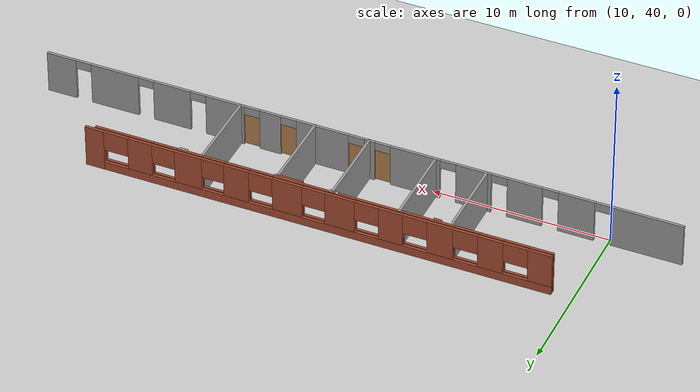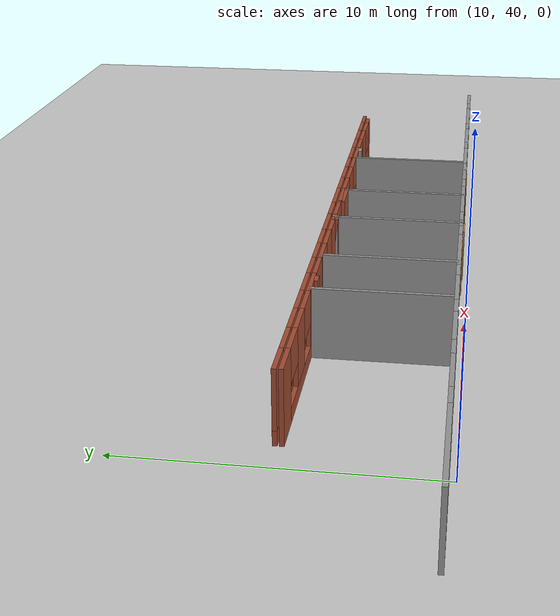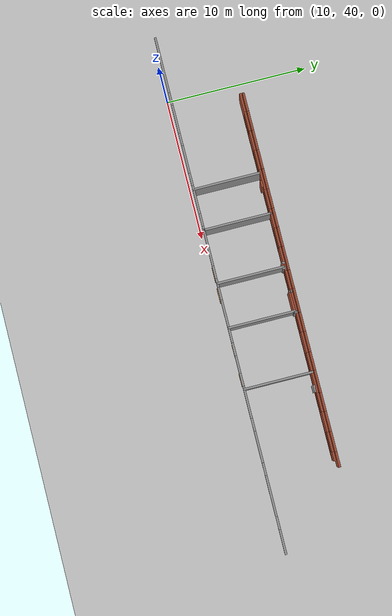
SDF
<sdf version="1.6">
 <world name="default">
  <model name="ground_plane">
   <static>1</static>
   <link name="link">
    <collision name="collision">
     <geometry><plane><normal>0 0 1</normal><size>100 100</size></plane></geometry>
     <surface><friction><ode><mu>100</mu><mu2>50</mu2></ode></friction></surface>
    </collision>
    <visual name="visual">
     <cast_shadows>0</cast_shadows>
     <geometry><plane><normal>0 0 1</normal><size>100 100</size></plane></geometry>
     <material>
      <script><uri>file://media/materials/scripts/gazebo.material</uri><name>Gazebo/Grey</name></script>
     </material>
    </visual>
   </link>
  </model>
  <model name="CVSSP">
   <pose>23.8714 24.094 0 0 -0 0</pose>
   <link name="Wall_301">
    <pose>0.541411 21.1476 0 0 -0 3.14159</pose>
    <visual name="Wall_301_Visual_0">
     <pose>-12.7063 0 1.25 0 -0 0</pose>
     <geometry><box><size>1.08735 0.15 2.5</size></box></geometry>
     <material>
      <script><uri>file://media/materials/scripts/gazebo.material</uri><name>Gazebo/Bricks</name></script>
      <ambient>1 1 1 1</ambient>
     </material>
    </visual>
    <collision name="Wall_301_Collision_0">
     <geometry><box><size>1.08735 0.15 2.5</size></box></geometry>
     <pose>-12.7063 0 1.25 0 -0 0</pose>
    </collision>
    <visual name="Wall_301_Visual_1">
     <pose>0.543674 0 0.25 0 -0 0</pose>
     <geometry><box><size>25.4127 0.15 0.5</size></box></geometry>
     <material>
      <script><uri>file://media/materials/scripts/gazebo.material</uri><name>Gazebo/Bricks</name></script>
      <ambient>1 1 1 1</ambient>
     </material>
    </visual>
    <collision name="Wall_301_Collision_1">
     <geometry><box><size>25.4127 0.15 0.5</size></box></geometry>
     <pose>0.543674 0 0.25 0 -0 0</pose>
    </collision>
    <visual name="Wall_301_Visual_2">
     <pose>-10.054 0 1.5 0 -0 0</pose>
     <geometry><box><size>1.40457 0.15 2</size></box></geometry>
     <material>
      <script><uri>file://media/materials/scripts/gazebo.material</uri><name>Gazebo/Bricks</name></script>
      <ambient>1 1 1 1</ambient>
     </material>
    </visual>
    <collision name="Wall_301_Collision_2">
     <geometry><box><size>1.40457 0.15 2</size></box></geometry>
     <pose>-10.054 0 1.5 0 -0 0</pose>
    </collision>
    <visual name="Wall_301_Visual_3">
     <pose>-7.26 0 1.5 0 -0 0</pose>
     <geometry><box><size>1.56325 0.15 2</size></box></geometry>
     <material>
      <script><uri>file://media/materials/scripts/gazebo.material</uri><name>Gazebo/Bricks</name></script>
      <ambient>1 1 1 1</ambient>
     </material>
    </visual>
    <collision name="Wall_301_Collision_3">
     <geometry><box><size>1.56325 0.15 2</size></box></geometry>
     <pose>-7.26 0 1.5 0 -0 0</pose>
    </collision>
    <visual name="Wall_301_Visual_4">
     <pose>-4.48871 0 1.5 0 -0 0</pose>
     <geometry><box><size>1.43857 0.15 2</size></box></geometry>
     <material>
      <script><uri>file://media/materials/scripts/gazebo.material</uri><name>Gazebo/Bricks</name></script>
      <ambient>1 1 1 1</ambient>
     </material>
    </visual>
    <collision name="Wall_301_Collision_4">
     <geometry><box><size>1.43857 0.15 2</size></box></geometry>
     <pose>-4.48871 0 1.5 0 -0 0</pose>
    </collision>
    <visual name="Wall_301_Visual_5">
     <pose>-1.57856 0 1.5 0 -0 0</pose>
     <geometry><box><size>1.70493 0.15 2</size></box></geometry>
     <material>
      <script><uri>file://media/materials/scripts/gazebo.material</uri><name>Gazebo/Bricks</name></script>
      <ambient>1 1 1 1</ambient>
     </material>
    </visual>
    <collision name="Wall_301_Collision_5">
     <geometry><box><size>1.70493 0.15 2</size></box></geometry>
     <pose>-1.57856 0 1.5 0 -0 0</pose>
    </collision>
    <visual name="Wall_301_Visual_6">
     <pose>1.41376 0 1.5 0 -0 0</pose>
     <geometry><box><size>1.68226 0.15 2</size></box></geometry>
     <material>
      <script><uri>file://media/materials/scripts/gazebo.material</uri><name>Gazebo/Bricks</name></script>
      <ambient>1 1 1 1</ambient>
     </material>
    </visual>
    <collision name="Wall_301_Collision_6">
     <geometry><box><size>1.68226 0.15 2</size></box></geometry>
     <pose>1.41376 0 1.5 0 -0 0</pose>
    </collision>
    <visual name="Wall_301_Visual_7">
     <pose>4.28139 0 1.5 0 -0 0</pose>
     <geometry><box><size>1.35356 0.15 2</size></box></geometry>
     <material>
      <script><uri>file://media/materials/scripts/gazebo.material</uri><name>Gazebo/Bricks</name></script>
      <ambient>1 1 1 1</ambient>
     </material>
    </visual>
    <collision name="Wall_301_Collision_7">
     <geometry><box><size>1.35356 0.15 2</size></box></geometry>
     <pose>4.28139 0 1.5 0 -0 0</pose>
    </collision>
    <visual name="Wall_301_Visual_8">
     <pose>7.04557 0 1.5 0 -0 0</pose>
     <geometry><box><size>1.44133 0.15 2</size></box></geometry>
     <material>
      <script><uri>file://media/materials/scripts/gazebo.material</uri><name>Gazebo/Bricks</name></script>
      <ambient>1 1 1 1</ambient>
     </material>
    </visual>
    <collision name="Wall_301_Collision_8">
     <geometry><box><size>1.44133 0.15 2</size></box></geometry>
     <pose>7.04557 0 1.5 0 -0 0</pose>
    </collision>
    <visual name="Wall_301_Visual_9">
     <pose>9.84934 0 1.5 0 -0 0</pose>
     <geometry><box><size>1.39875 0.15 2</size></box></geometry>
     <material>
      <script><uri>file://media/materials/scripts/gazebo.material</uri><name>Gazebo/Bricks</name></script>
      <ambient>1 1 1 1</ambient>
     </material>
    </visual>
    <collision name="Wall_301_Collision_9">
     <geometry><box><size>1.39875 0.15 2</size></box></geometry>
     <pose>9.84934 0 1.5 0 -0 0</pose>
    </collision>
    <visual name="Wall_301_Visual_10">
     <pose>12.5827 0 1.5 0 -0 0</pose>
     <geometry><box><size>1.33456 0.15 2</size></box></geometry>
     <material>
      <script><uri>file://media/materials/scripts/gazebo.material</uri><name>Gazebo/Bricks</name></script>
      <ambient>1 1 1 1</ambient>
     </material>
    </visual>
    <collision name="Wall_301_Collision_10">
     <geometry><box><size>1.33456 0.15 2</size></box></geometry>
     <pose>12.5827 0 1.5 0 -0 0</pose>
    </collision>
    <visual name="Wall_301_Visual_11">
     <pose>-11.4595 0 1.9 0 -0 0</pose>
     <geometry><box><size>1.4064 0.15 1.2</size></box></geometry>
     <material>
      <script><uri>file://media/materials/scripts/gazebo.material</uri><name>Gazebo/Bricks</name></script>
      <ambient>1 1 1 1</ambient>
     </material>
    </visual>
    <collision name="Wall_301_Collision_11">
     <geometry><box><size>1.4064 0.15 1.2</size></box></geometry>
     <pose>-11.4595 0 1.9 0 -0 0</pose>
    </collision>
    <visual name="Wall_301_Visual_12">
     <pose>-8.69666 0 1.9 0 -0 0</pose>
     <geometry><box><size>1.31005 0.15 1.2</size></box></geometry>
     <material>
      <script><uri>file://media/materials/scripts/gazebo.material</uri><name>Gazebo/Bricks</name></script>
      <ambient>1 1 1 1</ambient>
     </material>
    </visual>
    <collision name="Wall_301_Collision_12">
     <geometry><box><size>1.31005 0.15 1.2</size></box></geometry>
     <pose>-8.69666 0 1.9 0 -0 0</pose>
    </collision>
    <visual name="Wall_301_Visual_13">
     <pose>-5.84319 0 1.9 0 -0 0</pose>
     <geometry><box><size>1.27038 0.15 1.2</size></box></geometry>
     <material>
      <script><uri>file://media/materials/scripts/gazebo.material</uri><name>Gazebo/Bricks</name></script>
      <ambient>1 1 1 1</ambient>
     </material>
    </visual>
    <collision name="Wall_301_Collision_13">
     <geometry><box><size>1.27038 0.15 1.2</size></box></geometry>
     <pose>-5.84319 0 1.9 0 -0 0</pose>
    </collision>
    <visual name="Wall_301_Visual_14">
     <pose>-3.10023 0 1.9 0 -0 0</pose>
     <geometry><box><size>1.33839 0.15 1.2</size></box></geometry>
     <material>
      <script><uri>file://media/materials/scripts/gazebo.material</uri><name>Gazebo/Bricks</name></script>
      <ambient>1 1 1 1</ambient>
     </material>
    </visual>
    <collision name="Wall_301_Collision_14">
     <geometry><box><size>1.33839 0.15 1.2</size></box></geometry>
     <pose>-3.10023 0 1.9 0 -0 0</pose>
    </collision>
    <visual name="Wall_301_Visual_15">
     <pose>-0.076737 0 1.9 0 -0 0</pose>
     <geometry><box><size>1.29872 0.15 1.2</size></box></geometry>
     <material>
      <script><uri>file://media/materials/scripts/gazebo.material</uri><name>Gazebo/Bricks</name></script>
      <ambient>1 1 1 1</ambient>
     </material>
    </visual>
    <collision name="Wall_301_Collision_15">
     <geometry><box><size>1.29872 0.15 1.2</size></box></geometry>
     <pose>-0.076737 0 1.9 0 -0 0</pose>
    </collision>
    <visual name="Wall_301_Visual_16">
     <pose>2.92975 0 1.9 0 -0 0</pose>
     <geometry><box><size>1.34973 0.15 1.2</size></box></geometry>
     <material>
      <script><uri>file://media/materials/scripts/gazebo.material</uri><name>Gazebo/Bricks</name></script>
      <ambient>1 1 1 1</ambient>
     </material>
    </visual>
    <collision name="Wall_301_Collision_16">
     <geometry><box><size>1.34973 0.15 1.2</size></box></geometry>
     <pose>2.92975 0 1.9 0 -0 0</pose>
    </collision>
    <visual name="Wall_301_Visual_17">
     <pose>5.64154 0 1.9 0 -0 0</pose>
     <geometry><box><size>1.36673 0.15 1.2</size></box></geometry>
     <material>
      <script><uri>file://media/materials/scripts/gazebo.material</uri><name>Gazebo/Bricks</name></script>
      <ambient>1 1 1 1</ambient>
     </material>
    </visual>
    <collision name="Wall_301_Collision_17">
     <geometry><box><size>1.36673 0.15 1.2</size></box></geometry>
     <pose>5.64154 0 1.9 0 -0 0</pose>
    </collision>
    <visual name="Wall_301_Visual_18">
     <pose>8.4581 0 1.9 0 -0 0</pose>
     <geometry><box><size>1.38373 0.15 1.2</size></box></geometry>
     <material>
      <script><uri>file://media/materials/scripts/gazebo.material</uri><name>Gazebo/Bricks</name></script>
      <ambient>1 1 1 1</ambient>
     </material>
    </visual>
    <collision name="Wall_301_Collision_18">
     <geometry><box><size>1.38373 0.15 1.2</size></box></geometry>
     <pose>8.4581 0 1.9 0 -0 0</pose>
    </collision>
    <visual name="Wall_301_Visual_19">
     <pose>11.2321 0 1.9 0 -0 0</pose>
     <geometry><box><size>1.36673 0.15 1.2</size></box></geometry>
     <material>
      <script><uri>file://media/materials/scripts/gazebo.material</uri><name>Gazebo/Bricks</name></script>
      <ambient>1 1 1 1</ambient>
     </material>
    </visual>
    <collision name="Wall_301_Collision_19">
     <geometry><box><size>1.36673 0.15 1.2</size></box></geometry>
     <pose>11.2321 0 1.9 0 -0 0</pose>
    </collision>
   </link>
   <link name="Wall_303">
    <pose>0.29478 20.9408 0 0 -0 0</pose>
    <visual name="Wall_303_Visual_0">
     <pose>-12.3344 0 1.25 0 -0 0</pose>
     <geometry><box><size>1.33119 0.15 2.5</size></box></geometry>
     <material>
      <script><uri>file://media/materials/scripts/gazebo.material</uri><name>Gazebo/Bricks</name></script>
      <ambient>1 1 1 1</ambient>
     </material>
    </visual>
    <collision name="Wall_303_Collision_0">
     <geometry><box><size>1.33119 0.15 2.5</size></box></geometry>
     <pose>-12.3344 0 1.25 0 -0 0</pose>
    </collision>
    <visual name="Wall_303_Visual_1">
     <pose>0.665598 0 0.25 0 -0 0</pose>
     <geometry><box><size>24.6688 0.15 0.5</size></box></geometry>
     <material>
      <script><uri>file://media/materials/scripts/gazebo.material</uri><name>Gazebo/Bricks</name></script>
      <ambient>1 1 1 1</ambient>
     </material>
    </visual>
    <collision name="Wall_303_Collision_1">
     <geometry><box><size>24.6688 0.15 0.5</size></box></geometry>
     <pose>0.665598 0 0.25 0 -0 0</pose>
    </collision>
    <visual name="Wall_303_Visual_2">
     <pose>-9.60766 0 1.5 0 -0 0</pose>
     <geometry><box><size>1.38884 0.15 2</size></box></geometry>
     <material>
      <script><uri>file://media/materials/scripts/gazebo.material</uri><name>Gazebo/Bricks</name></script>
      <ambient>1 1 1 1</ambient>
     </material>
    </visual>
    <collision name="Wall_303_Collision_2">
     <geometry><box><size>1.38884 0.15 2</size></box></geometry>
     <pose>-9.60766 0 1.5 0 -0 0</pose>
    </collision>
    <visual name="Wall_303_Visual_3">
     <pose>-6.80389 0 1.5 0 -0 0</pose>
     <geometry><box><size>1.45124 0.15 2</size></box></geometry>
     <material>
      <script><uri>file://media/materials/scripts/gazebo.material</uri><name>Gazebo/Bricks</name></script>
      <ambient>1 1 1 1</ambient>
     </material>
    </visual>
    <collision name="Wall_303_Collision_3">
     <geometry><box><size>1.45124 0.15 2</size></box></geometry>
     <pose>-6.80389 0 1.5 0 -0 0</pose>
    </collision>
    <visual name="Wall_303_Visual_4">
     <pose>-4.03476 0 1.5 0 -0 0</pose>
     <geometry><box><size>1.34223 0.15 2</size></box></geometry>
     <material>
      <script><uri>file://media/materials/scripts/gazebo.material</uri><name>Gazebo/Bricks</name></script>
      <ambient>1 1 1 1</ambient>
     </material>
    </visual>
    <collision name="Wall_303_Collision_4">
     <geometry><box><size>1.34223 0.15 2</size></box></geometry>
     <pose>-4.03476 0 1.5 0 -0 0</pose>
    </collision>
    <visual name="Wall_303_Visual_5">
     <pose>-1.16996 0 1.5 0 -0 0</pose>
     <geometry><box><size>1.6766 0.15 2</size></box></geometry>
     <material>
      <script><uri>file://media/materials/scripts/gazebo.material</uri><name>Gazebo/Bricks</name></script>
      <ambient>1 1 1 1</ambient>
     </material>
    </visual>
    <collision name="Wall_303_Collision_5">
     <geometry><box><size>1.6766 0.15 2</size></box></geometry>
     <pose>-1.16996 0 1.5 0 -0 0</pose>
    </collision>
    <visual name="Wall_303_Visual_6">
     <pose>1.82803 0 1.5 0 -0 0</pose>
     <geometry><box><size>1.7106 0.15 2</size></box></geometry>
     <material>
      <script><uri>file://media/materials/scripts/gazebo.material</uri><name>Gazebo/Bricks</name></script>
      <ambient>1 1 1 1</ambient>
     </material>
    </visual>
    <collision name="Wall_303_Collision_6">
     <geometry><box><size>1.7106 0.15 2</size></box></geometry>
     <pose>1.82803 0 1.5 0 -0 0</pose>
    </collision>
    <visual name="Wall_303_Visual_7">
     <pose>4.72401 0 1.5 0 -0 0</pose>
     <geometry><box><size>1.43857 0.15 2</size></box></geometry>
     <material>
      <script><uri>file://media/materials/scripts/gazebo.material</uri><name>Gazebo/Bricks</name></script>
      <ambient>1 1 1 1</ambient>
     </material>
    </visual>
    <collision name="Wall_303_Collision_7">
     <geometry><box><size>1.43857 0.15 2</size></box></geometry>
     <pose>4.72401 0 1.5 0 -0 0</pose>
    </collision>
    <visual name="Wall_303_Visual_8">
     <pose>7.50097 0 1.5 0 -0 0</pose>
     <geometry><box><size>1.55192 0.15 2</size></box></geometry>
     <material>
      <script><uri>file://media/materials/scripts/gazebo.material</uri><name>Gazebo/Bricks</name></script>
      <ambient>1 1 1 1</ambient>
     </material>
    </visual>
    <collision name="Wall_303_Collision_8">
     <geometry><box><size>1.55192 0.15 2</size></box></geometry>
     <pose>7.50097 0 1.5 0 -0 0</pose>
    </collision>
    <visual name="Wall_303_Visual_9">
     <pose>10.2921 0 1.5 0 -0 0</pose>
     <geometry><box><size>1.3989 0.15 2</size></box></geometry>
     <material>
      <script><uri>file://media/materials/scripts/gazebo.material</uri><name>Gazebo/Bricks</name></script>
      <ambient>1 1 1 1</ambient>
     </material>
    </visual>
    <collision name="Wall_303_Collision_9">
     <geometry><box><size>1.3989 0.15 2</size></box></geometry>
     <pose>10.2921 0 1.5 0 -0 0</pose>
    </collision>
    <visual name="Wall_303_Visual_10">
     <pose>12.682 0 1.5 0 -0 0</pose>
     <geometry><box><size>0.636054 0.15 2</size></box></geometry>
     <material>
      <script><uri>file://media/materials/scripts/gazebo.material</uri><name>Gazebo/Bricks</name></script>
      <ambient>1 1 1 1</ambient>
     </material>
    </visual>
    <collision name="Wall_303_Collision_10">
     <geometry><box><size>0.636054 0.15 2</size></box></geometry>
     <pose>12.682 0 1.5 0 -0 0</pose>
    </collision>
    <visual name="Wall_303_Visual_11">
     <pose>-10.9854 0 1.9 0 -0 0</pose>
     <geometry><box><size>1.36673 0.15 1.2</size></box></geometry>
     <material>
      <script><uri>file://media/materials/scripts/gazebo.material</uri><name>Gazebo/Bricks</name></script>
      <ambient>1 1 1 1</ambient>
     </material>
    </visual>
    <collision name="Wall_303_Collision_11">
     <geometry><box><size>1.36673 0.15 1.2</size></box></geometry>
     <pose>-10.9854 0 1.9 0 -0 0</pose>
    </collision>
    <visual name="Wall_303_Visual_12">
     <pose>-8.22138 0 1.9 0 -0 0</pose>
     <geometry><box><size>1.38373 0.15 1.2</size></box></geometry>
     <material>
      <script><uri>file://media/materials/scripts/gazebo.material</uri><name>Gazebo/Bricks</name></script>
      <ambient>1 1 1 1</ambient>
     </material>
    </visual>
    <collision name="Wall_303_Collision_12">
     <geometry><box><size>1.38373 0.15 1.2</size></box></geometry>
     <pose>-8.22138 0 1.9 0 -0 0</pose>
    </collision>
    <visual name="Wall_303_Visual_13">
     <pose>-5.39208 0 1.9 0 -0 0</pose>
     <geometry><box><size>1.37239 0.15 1.2</size></box></geometry>
     <material>
      <script><uri>file://media/materials/scripts/gazebo.material</uri><name>Gazebo/Bricks</name></script>
      <ambient>1 1 1 1</ambient>
     </material>
    </visual>
    <collision name="Wall_303_Collision_13">
     <geometry><box><size>1.37239 0.15 1.2</size></box></geometry>
     <pose>-5.39208 0 1.9 0 -0 0</pose>
    </collision>
    <visual name="Wall_303_Visual_14">
     <pose>-2.68595 0 1.9 0 -0 0</pose>
     <geometry><box><size>1.35539 0.15 1.2</size></box></geometry>
     <material>
      <script><uri>file://media/materials/scripts/gazebo.material</uri><name>Gazebo/Bricks</name></script>
      <ambient>1 1 1 1</ambient>
     </material>
    </visual>
    <collision name="Wall_303_Collision_14">
     <geometry><box><size>1.35539 0.15 1.2</size></box></geometry>
     <pose>-2.68595 0 1.9 0 -0 0</pose>
    </collision>
    <visual name="Wall_303_Visual_15">
     <pose>0.320535 0 1.9 0 -0 0</pose>
     <geometry><box><size>1.30439 0.15 1.2</size></box></geometry>
     <material>
      <script><uri>file://media/materials/scripts/gazebo.material</uri><name>Gazebo/Bricks</name></script>
      <ambient>1 1 1 1</ambient>
     </material>
    </visual>
    <collision name="Wall_303_Collision_15">
     <geometry><box><size>1.30439 0.15 1.2</size></box></geometry>
     <pose>0.320535 0 1.9 0 -0 0</pose>
    </collision>
    <visual name="Wall_303_Visual_16">
     <pose>3.34402 0 1.9 0 -0 0</pose>
     <geometry><box><size>1.32139 0.15 1.2</size></box></geometry>
     <material>
      <script><uri>file://media/materials/scripts/gazebo.material</uri><name>Gazebo/Bricks</name></script>
      <ambient>1 1 1 1</ambient>
     </material>
    </visual>
    <collision name="Wall_303_Collision_16">
     <geometry><box><size>1.32139 0.15 1.2</size></box></geometry>
     <pose>3.34402 0 1.9 0 -0 0</pose>
    </collision>
    <visual name="Wall_303_Visual_17">
     <pose>6.08415 0 1.9 0 -0 0</pose>
     <geometry><box><size>1.28172 0.15 1.2</size></box></geometry>
     <material>
      <script><uri>file://media/materials/scripts/gazebo.material</uri><name>Gazebo/Bricks</name></script>
      <ambient>1 1 1 1</ambient>
     </material>
    </visual>
    <collision name="Wall_303_Collision_17">
     <geometry><box><size>1.28172 0.15 1.2</size></box></geometry>
     <pose>6.08415 0 1.9 0 -0 0</pose>
    </collision>
    <visual name="Wall_303_Visual_18">
     <pose>8.93479 0 1.9 0 -0 0</pose>
     <geometry><box><size>1.31572 0.15 1.2</size></box></geometry>
     <material>
      <script><uri>file://media/materials/scripts/gazebo.material</uri><name>Gazebo/Bricks</name></script>
      <ambient>1 1 1 1</ambient>
     </material>
    </visual>
    <collision name="Wall_303_Collision_18">
     <geometry><box><size>1.31572 0.15 1.2</size></box></geometry>
     <pose>8.93479 0 1.9 0 -0 0</pose>
    </collision>
    <visual name="Wall_303_Visual_19">
     <pose>11.6777 0 1.9 0 -0 0</pose>
     <geometry><box><size>1.37239 0.15 1.2</size></box></geometry>
     <material>
      <script><uri>file://media/materials/scripts/gazebo.material</uri><name>Gazebo/Bricks</name></script>
      <ambient>1 1 1 1</ambient>
     </material>
    </visual>
    <collision name="Wall_303_Collision_19">
     <geometry><box><size>1.37239 0.15 1.2</size></box></geometry>
     <pose>11.6777 0 1.9 0 -0 0</pose>
    </collision>
   </link>
   <link name="Wall_315">
    <collision name="Wall_315_Collision">
     <geometry><box><size>4.75 0.15 2.5</size></box></geometry>
     <pose>0 0 1.25 0 -0 0</pose>
    </collision>
    <visual name="Wall_315_Visual">
     <pose>0 0 1.25 0 -0 0</pose>
     <geometry><box><size>4.75 0.15 2.5</size></box></geometry>
     <material>
      <script><uri>file://media/materials/scripts/gazebo.material</uri><name>Gazebo/Grey</name></script>
      <ambient>0.588235 0.588235 0.588235 1</ambient>
     </material>
    </visual>
    <pose>-7.00685 18.5251 0 0 -0 1.5708</pose>
   </link>
   <link name="Wall_318">
    <collision name="Wall_318_Collision">
     <geometry><box><size>4.79 0.15 2.5</size></box></geometry>
     <pose>0 0 1.25 0 -0 0</pose>
    </collision>
    <visual name="Wall_318_Visual">
     <pose>0 0 1.25 0 -0 0</pose>
     <geometry><box><size>4.79 0.15 2.5</size></box></geometry>
     <material>
      <script><uri>file://media/materials/scripts/gazebo.material</uri><name>Gazebo/Grey</name></script>
      <ambient>1 1 1 1</ambient>
     </material>
    </visual>
    <pose>-4.1133 18.5854 0 0 0 -1.5708</pose>
   </link>
   <link name="Wall_320">
    <collision name="Wall_320_Collision">
     <geometry><box><size>4.75 0.15 2.5</size></box></geometry>
     <pose>0 0 1.25 0 -0 0</pose>
    </collision>
    <visual name="Wall_320_Visual">
     <pose>0 0 1.25 0 -0 0</pose>
     <geometry><box><size>4.75 0.15 2.5</size></box></geometry>
     <material>
      <script><uri>file://media/materials/scripts/gazebo.material</uri><name>Gazebo/Grey</name></script>
      <ambient>0.588235 0.588235 0.588235 1</ambient>
     </material>
    </visual>
    <pose>-0.323303 18.5354 0 0 -0 1.5708</pose>
   </link>
   <link name="Wall_322">
    <collision name="Wall_322_Collision">
     <geometry><box><size>4.75 0.15 2.5</size></box></geometry>
     <pose>0 0 1.25 0 -0 0</pose>
    </collision>
    <visual name="Wall_322_Visual">
     <pose>0 0 1.25 0 -0 0</pose>
     <geometry><box><size>4.75 0.15 2.5</size></box></geometry>
     <material>
      <script><uri>file://media/materials/scripts/gazebo.material</uri><name>Gazebo/Grey</name></script>
      <ambient>0.588235 0.588235 0.588235 1</ambient>
     </material>
    </visual>
    <pose>2.8067 18.5154 0 0 -0 1.5708</pose>
   </link>
   <link name="Wall_323">
    <collision name="Wall_323_Collision">
     <geometry><box><size>1.5 0.15 2.5</size></box></geometry>
     <pose>0 0 1.25 0 -0 0</pose>
    </collision>
    <visual name="Wall_323_Visual">
     <pose>0 0 1.25 0 -0 0</pose>
     <geometry><box><size>1.5 0.15 2.5</size></box></geometry>
     <material>
      <script><uri>file://media/materials/scripts/gazebo.material</uri><name>Gazebo/Bricks</name></script>
      <ambient>1 1 1 1</ambient>
     </material>
    </visual>
    <pose>2.1317 20.8154 0 0 -0 3.14159</pose>
   </link>
   <link name="Wall_324">
    <collision name="Wall_324_Collision">
     <geometry><box><size>0.25 0.15 2.5</size></box></geometry>
     <pose>0 0 1.25 0 -0 0</pose>
    </collision>
    <visual name="Wall_324_Visual">
     <pose>0 0 1.25 0 -0 0</pose>
     <geometry><box><size>0.25 0.15 2.5</size></box></geometry>
     <material>
      <script><uri>file://media/materials/scripts/gazebo.material</uri><name>Gazebo/Grey</name></script>
      <ambient>1 1 1 1</ambient>
     </material>
    </visual>
    <pose>1.4567 20.8654 0 0 -0 1.5708</pose>
   </link>
   <link name="Wall_326">
    <collision name="Wall_326_Collision">
     <geometry><box><size>0.41 0.15 2.5</size></box></geometry>
     <pose>0 0 1.25 0 -0 0</pose>
    </collision>
    <visual name="Wall_326_Visual">
     <pose>0 0 1.25 0 -0 0</pose>
     <geometry><box><size>0.41 0.15 2.5</size></box></geometry>
     <material>
      <script><uri>file://media/materials/scripts/gazebo.material</uri><name>Gazebo/Bricks</name></script>
      <ambient>1 1 1 1</ambient>
     </material>
    </visual>
    <pose>-0.453303 20.8354 0 0 -0 3.14159</pose>
   </link>
   <link name="Wall_327">
    <collision name="Wall_327_Collision">
     <geometry><box><size>0.25 0.15 2.5</size></box></geometry>
     <pose>0 0 1.25 0 -0 0</pose>
    </collision>
    <visual name="Wall_327_Visual">
     <pose>0 0 1.25 0 -0 0</pose>
     <geometry><box><size>0.25 0.15 2.5</size></box></geometry>
     <material>
      <script><uri>file://media/materials/scripts/gazebo.material</uri><name>Gazebo/Grey</name></script>
      <ambient>1 1 1 1</ambient>
     </material>
    </visual>
    <pose>-0.583303 20.8854 0 0 -0 1.5708</pose>
   </link>
   <link name="Wall_329">
    <collision name="Wall_329_Collision">
     <geometry><box><size>0.25 0.15 2.5</size></box></geometry>
     <pose>0 0 1.25 0 -0 0</pose>
    </collision>
    <visual name="Wall_329_Visual">
     <pose>0 0 1.25 0 -0 0</pose>
     <geometry><box><size>0.25 0.15 2.5</size></box></geometry>
     <material>
      <script><uri>file://media/materials/scripts/gazebo.material</uri><name>Gazebo/Grey</name></script>
      <ambient>1 1 1 1</ambient>
     </material>
    </visual>
    <pose>-0.273303 20.8354 0 0 -0 0</pose>
   </link>
   <link name="Wall_330">
    <collision name="Wall_330_Collision">
     <geometry><box><size>0.25 0.15 2.5</size></box></geometry>
     <pose>0 0 1.25 0 -0 0</pose>
    </collision>
    <visual name="Wall_330_Visual">
     <pose>0 0 1.25 0 -0 0</pose>
     <geometry><box><size>0.25 0.15 2.5</size></box></geometry>
     <material>
      <script><uri>file://media/materials/scripts/gazebo.material</uri><name>Gazebo/Grey</name></script>
      <ambient>1 1 1 1</ambient>
     </material>
    </visual>
    <pose>-0.223303 20.8854 0 0 -0 1.5708</pose>
   </link>
   <link name="Wall_332">
    <collision name="Wall_332_Collision">
     <geometry><box><size>0.280384 0.15 2.5</size></box></geometry>
     <pose>0 0 1.25 0 -0 0</pose>
    </collision>
    <visual name="Wall_332_Visual">
     <pose>0 0 1.25 0 -0 0</pose>
     <geometry><box><size>0.280384 0.15 2.5</size></box></geometry>
     <material>
      <script><uri>file://media/materials/scripts/gazebo.material</uri><name>Gazebo/Grey</name></script>
      <ambient>1 1 1 1</ambient>
     </material>
    </visual>
    <pose>2.8517 20.8304 0 0 0 -0.076772</pose>
   </link>
   <link name="Wall_333">
    <collision name="Wall_333_Collision">
     <geometry><box><size>0.25 0.15 2.5</size></box></geometry>
     <pose>0 0 1.25 0 -0 0</pose>
    </collision>
    <visual name="Wall_333_Visual">
     <pose>0 0 1.25 0 -0 0</pose>
     <geometry><box><size>0.25 0.15 2.5</size></box></geometry>
     <material>
      <script><uri>file://media/materials/scripts/gazebo.material</uri><name>Gazebo/Grey</name></script>
      <ambient>1 1 1 1</ambient>
     </material>
    </visual>
    <pose>2.9067 20.8754 0 0 -0 1.5708</pose>
   </link>
   <link name="Wall_335">
    <collision name="Wall_335_Collision">
     <geometry><box><size>4.88455 0.15 2.5</size></box></geometry>
     <pose>0 0 1.25 0 -0 0</pose>
    </collision>
    <visual name="Wall_335_Visual">
     <pose>0 0 1.25 0 -0 0</pose>
     <geometry><box><size>4.88455 0.15 2.5</size></box></geometry>
     <material>
      <script><uri>file://media/materials/scripts/gazebo.material</uri><name>Gazebo/Grey</name></script>
      <ambient>0.588235 0.588235 0.588235 1</ambient>
     </material>
    </visual>
    <pose>7.10695 18.568 0 0 -0 1.5708</pose>
   </link>
   <link name="Wall_663">
    <collision name="Wall_663_Collision">
     <geometry><box><size>0.456076 0.15 2.5</size></box></geometry>
     <pose>0 0 1.25 0 -0 0</pose>
    </collision>
    <visual name="Wall_663_Visual">
     <pose>0 0 1.25 0 -0 0</pose>
     <geometry><box><size>0.456076 0.15 2.5</size></box></geometry>
     <material>
      <script><uri>file://media/materials/scripts/gazebo.material</uri><name>Gazebo/Bricks</name></script>
      <ambient>1 1 1 1</ambient>
     </material>
    </visual>
    <pose>-6.21292 20.8145 0 0 -0 0</pose>
   </link>
   <link name="Wall_671">
    <collision name="Wall_671_Collision">
     <geometry><box><size>0.491931 0.15 2.5</size></box></geometry>
     <pose>0 0 1.25 0 -0 0</pose>
    </collision>
    <visual name="Wall_671_Visual">
     <pose>0 0 1.25 0 -0 0</pose>
     <geometry><box><size>0.491931 0.15 2.5</size></box></geometry>
     <material>
      <script><uri>file://media/materials/scripts/gazebo.material</uri><name>Gazebo/Grey</name></script>
      <ambient>1 1 1 1</ambient>
     </material>
    </visual>
    <pose>8.2379 20.825 0 0 -0 0</pose>
   </link>
   <link name="Wall_70">
    <pose>0.280393 16.1874 0 0 -0 3.14159</pose>
    <visual name="Wall_70_Visual_0">
     <pose>-17.3872 0 1.25 0 -0 0</pose>
     <geometry><box><size>1.72569 0.15 2.5</size></box></geometry>
     <material>
      <script><uri>file://media/materials/scripts/gazebo.material</uri><name>Gazebo/Grey</name></script>
      <ambient>0.588235 0.588235 0.588235 1</ambient>
     </material>
    </visual>
    <collision name="Wall_70_Collision_0">
     <geometry><box><size>1.72569 0.15 2.5</size></box></geometry>
     <pose>-17.3872 0 1.25 0 -0 0</pose>
    </collision>
    <visual name="Wall_70_Visual_1">
     <pose>-14.2239 0 1.25 0 -0 0</pose>
     <geometry><box><size>2.8009 0.15 2.5</size></box></geometry>
     <material>
      <script><uri>file://media/materials/scripts/gazebo.material</uri><name>Gazebo/Grey</name></script>
      <ambient>0.588235 0.588235 0.588235 1</ambient>
     </material>
    </visual>
    <collision name="Wall_70_Collision_1">
     <geometry><box><size>2.8009 0.15 2.5</size></box></geometry>
     <pose>-14.2239 0 1.25 0 -0 0</pose>
    </collision>
    <visual name="Wall_70_Visual_2">
     <pose>-10.8352 0 1.25 0 -0 0</pose>
     <geometry><box><size>2.17637 0.15 2.5</size></box></geometry>
     <material>
      <script><uri>file://media/materials/scripts/gazebo.material</uri><name>Gazebo/Grey</name></script>
      <ambient>0.588235 0.588235 0.588235 1</ambient>
     </material>
    </visual>
    <collision name="Wall_70_Collision_2">
     <geometry><box><size>2.17637 0.15 2.5</size></box></geometry>
     <pose>-10.8352 0 1.25 0 -0 0</pose>
    </collision>
    <visual name="Wall_70_Visual_3">
     <pose>-7.72416 0 1.25 0 -0 0</pose>
     <geometry><box><size>2.24576 0.15 2.5</size></box></geometry>
     <material>
      <script><uri>file://media/materials/scripts/gazebo.material</uri><name>Gazebo/Grey</name></script>
      <ambient>0.588235 0.588235 0.588235 1</ambient>
     </material>
    </visual>
    <collision name="Wall_70_Collision_3">
     <geometry><box><size>2.24576 0.15 2.5</size></box></geometry>
     <pose>-7.72416 0 1.25 0 -0 0</pose>
    </collision>
    <visual name="Wall_70_Visual_4">
     <pose>-5.08727 0 1.25 0 -0 0</pose>
     <geometry><box><size>1.22802 0.15 2.5</size></box></geometry>
     <material>
      <script><uri>file://media/materials/scripts/gazebo.material</uri><name>Gazebo/Grey</name></script>
      <ambient>0.588235 0.588235 0.588235 1</ambient>
     </material>
    </visual>
    <collision name="Wall_70_Collision_4">
     <geometry><box><size>1.22802 0.15 2.5</size></box></geometry>
     <pose>-5.08727 0 1.25 0 -0 0</pose>
    </collision>
    <visual name="Wall_70_Visual_5">
     <pose>-2.06873 0 1.25 0 -0 0</pose>
     <geometry><box><size>3.00907 0.15 2.5</size></box></geometry>
     <material>
      <script><uri>file://media/materials/scripts/gazebo.material</uri><name>Gazebo/Grey</name></script>
      <ambient>0.588235 0.588235 0.588235 1</ambient>
     </material>
    </visual>
    <collision name="Wall_70_Collision_5">
     <geometry><box><size>3.00907 0.15 2.5</size></box></geometry>
     <pose>-2.06873 0 1.25 0 -0 0</pose>
    </collision>
    <visual name="Wall_70_Visual_6">
     <pose>0.637556 0 1.25 0 -0 0</pose>
     <geometry><box><size>0.60349 0.15 2.5</size></box></geometry>
     <material>
      <script><uri>file://media/materials/scripts/gazebo.material</uri><name>Gazebo/Grey</name></script>
      <ambient>0.588235 0.588235 0.588235 1</ambient>
     </material>
    </visual>
    <collision name="Wall_70_Collision_6">
     <geometry><box><size>0.60349 0.15 2.5</size></box></geometry>
     <pose>0.637556 0 1.25 0 -0 0</pose>
    </collision>
    <visual name="Wall_70_Visual_7">
     <pose>3.25131 0 1.25 0 -0 0</pose>
     <geometry><box><size>2.82403 0.15 2.5</size></box></geometry>
     <material>
      <script><uri>file://media/materials/scripts/gazebo.material</uri><name>Gazebo/Grey</name></script>
      <ambient>0.588235 0.588235 0.588235 1</ambient>
     </material>
    </visual>
    <collision name="Wall_70_Collision_7">
     <geometry><box><size>2.82403 0.15 2.5</size></box></geometry>
     <pose>3.25131 0 1.25 0 -0 0</pose>
    </collision>
    <visual name="Wall_70_Visual_8">
     <pose>6.55899 0 1.25 0 -0 0</pose>
     <geometry><box><size>1.99133 0.15 2.5</size></box></geometry>
     <material>
      <script><uri>file://media/materials/scripts/gazebo.material</uri><name>Gazebo/Grey</name></script>
      <ambient>0.588235 0.588235 0.588235 1</ambient>
     </material>
    </visual>
    <collision name="Wall_70_Collision_8">
     <geometry><box><size>1.99133 0.15 2.5</size></box></geometry>
     <pose>6.55899 0 1.25 0 -0 0</pose>
    </collision>
    <visual name="Wall_70_Visual_9">
     <pose>9.43875 0 1.25 0 -0 0</pose>
     <geometry><box><size>1.9682 0.15 2.5</size></box></geometry>
     <material>
      <script><uri>file://media/materials/scripts/gazebo.material</uri><name>Gazebo/Grey</name></script>
      <ambient>0.588235 0.588235 0.588235 1</ambient>
     </material>
    </visual>
    <collision name="Wall_70_Collision_9">
     <geometry><box><size>1.9682 0.15 2.5</size></box></geometry>
     <pose>9.43875 0 1.25 0 -0 0</pose>
    </collision>
    <visual name="Wall_70_Visual_10">
     <pose>12.3301 0 1.25 0 -0 0</pose>
     <geometry><box><size>2.01446 0.15 2.5</size></box></geometry>
     <material>
      <script><uri>file://media/materials/scripts/gazebo.material</uri><name>Gazebo/Grey</name></script>
      <ambient>0.588235 0.588235 0.588235 1</ambient>
     </material>
    </visual>
    <collision name="Wall_70_Collision_10">
     <geometry><box><size>2.01446 0.15 2.5</size></box></geometry>
     <pose>12.3301 0 1.25 0 -0 0</pose>
    </collision>
    <visual name="Wall_70_Visual_11">
     <pose>16.2437 0 1.25 0 -0 0</pose>
     <geometry><box><size>4.01269 0.15 2.5</size></box></geometry>
     <material>
      <script><uri>file://media/materials/scripts/gazebo.material</uri><name>Gazebo/Grey</name></script>
      <ambient>0.588235 0.588235 0.588235 1</ambient>
     </material>
    </visual>
    <collision name="Wall_70_Collision_11">
     <geometry><box><size>4.01269 0.15 2.5</size></box></geometry>
     <pose>16.2437 0 1.25 0 -0 0</pose>
    </collision>
    <visual name="Wall_70_Visual_12">
     <pose>-16.0743 0 2.25 0 -0 0</pose>
     <geometry><box><size>0.9 0.15 0.5</size></box></geometry>
     <material>
      <script><uri>file://media/materials/scripts/gazebo.material</uri><name>Gazebo/Grey</name></script>
      <ambient>0.588235 0.588235 0.588235 1</ambient>
     </material>
    </visual>
    <collision name="Wall_70_Collision_12">
     <geometry><box><size>0.9 0.15 0.5</size></box></geometry>
     <pose>-16.0743 0 2.25 0 -0 0</pose>
    </collision>
    <visual name="Wall_70_Visual_13">
     <pose>-12.3734 0 2.25 0 -0 0</pose>
     <geometry><box><size>0.9 0.15 0.5</size></box></geometry>
     <material>
      <script><uri>file://media/materials/scripts/gazebo.material</uri><name>Gazebo/Grey</name></script>
      <ambient>0.588235 0.588235 0.588235 1</ambient>
     </material>
    </visual>
    <collision name="Wall_70_Collision_13">
     <geometry><box><size>0.9 0.15 0.5</size></box></geometry>
     <pose>-12.3734 0 2.25 0 -0 0</pose>
    </collision>
    <visual name="Wall_70_Visual_14">
     <pose>-9.29704 0 2.25 0 -0 0</pose>
     <geometry><box><size>0.9 0.15 0.5</size></box></geometry>
     <material>
      <script><uri>file://media/materials/scripts/gazebo.material</uri><name>Gazebo/Grey</name></script>
      <ambient>0.588235 0.588235 0.588235 1</ambient>
     </material>
    </visual>
    <collision name="Wall_70_Collision_14">
     <geometry><box><size>0.9 0.15 0.5</size></box></geometry>
     <pose>-9.29704 0 2.25 0 -0 0</pose>
    </collision>
    <visual name="Wall_70_Visual_15">
     <pose>-6.15128 0 2.25 0 -0 0</pose>
     <geometry><box><size>0.9 0.15 0.5</size></box></geometry>
     <material>
      <script><uri>file://media/materials/scripts/gazebo.material</uri><name>Gazebo/Grey</name></script>
      <ambient>0.588235 0.588235 0.588235 1</ambient>
     </material>
    </visual>
    <collision name="Wall_70_Collision_15">
     <geometry><box><size>0.9 0.15 0.5</size></box></geometry>
     <pose>-6.15128 0 2.25 0 -0 0</pose>
    </collision>
    <visual name="Wall_70_Visual_16">
     <pose>-4.02326 0 2.25 0 -0 0</pose>
     <geometry><box><size>0.9 0.15 0.5</size></box></geometry>
     <material>
      <script><uri>file://media/materials/scripts/gazebo.material</uri><name>Gazebo/Grey</name></script>
      <ambient>0.588235 0.588235 0.588235 1</ambient>
     </material>
    </visual>
    <collision name="Wall_70_Collision_16">
     <geometry><box><size>0.9 0.15 0.5</size></box></geometry>
     <pose>-4.02326 0 2.25 0 -0 0</pose>
    </collision>
    <visual name="Wall_70_Visual_17">
     <pose>-0.114189 0 2.25 0 -0 0</pose>
     <geometry><box><size>0.9 0.15 0.5</size></box></geometry>
     <material>
      <script><uri>file://media/materials/scripts/gazebo.material</uri><name>Gazebo/Grey</name></script>
      <ambient>0.588235 0.588235 0.588235 1</ambient>
     </material>
    </visual>
    <collision name="Wall_70_Collision_17">
     <geometry><box><size>0.9 0.15 0.5</size></box></geometry>
     <pose>-0.114189 0 2.25 0 -0 0</pose>
    </collision>
    <visual name="Wall_70_Visual_18">
     <pose>1.3893 0 2.25 0 -0 0</pose>
     <geometry><box><size>0.9 0.15 0.5</size></box></geometry>
     <material>
      <script><uri>file://media/materials/scripts/gazebo.material</uri><name>Gazebo/Grey</name></script>
      <ambient>0.588235 0.588235 0.588235 1</ambient>
     </material>
    </visual>
    <collision name="Wall_70_Collision_18">
     <geometry><box><size>0.9 0.15 0.5</size></box></geometry>
     <pose>1.3893 0 2.25 0 -0 0</pose>
    </collision>
    <visual name="Wall_70_Visual_19">
     <pose>5.11333 0 2.25 0 -0 0</pose>
     <geometry><box><size>0.9 0.15 0.5</size></box></geometry>
     <material>
      <script><uri>file://media/materials/scripts/gazebo.material</uri><name>Gazebo/Grey</name></script>
      <ambient>0.588235 0.588235 0.588235 1</ambient>
     </material>
    </visual>
    <collision name="Wall_70_Collision_19">
     <geometry><box><size>0.9 0.15 0.5</size></box></geometry>
     <pose>5.11333 0 2.25 0 -0 0</pose>
    </collision>
    <visual name="Wall_70_Visual_20">
     <pose>8.00465 0 2.25 0 -0 0</pose>
     <geometry><box><size>0.9 0.15 0.5</size></box></geometry>
     <material>
      <script><uri>file://media/materials/scripts/gazebo.material</uri><name>Gazebo/Grey</name></script>
      <ambient>0.588235 0.588235 0.588235 1</ambient>
     </material>
    </visual>
    <collision name="Wall_70_Collision_20">
     <geometry><box><size>0.9 0.15 0.5</size></box></geometry>
     <pose>8.00465 0 2.25 0 -0 0</pose>
    </collision>
    <visual name="Wall_70_Visual_21">
     <pose>10.8728 0 2.25 0 -0 0</pose>
     <geometry><box><size>0.9 0.15 0.5</size></box></geometry>
     <material>
      <script><uri>file://media/materials/scripts/gazebo.material</uri><name>Gazebo/Grey</name></script>
      <ambient>0.588235 0.588235 0.588235 1</ambient>
     </material>
    </visual>
    <collision name="Wall_70_Collision_21">
     <geometry><box><size>0.9 0.15 0.5</size></box></geometry>
     <pose>10.8728 0 2.25 0 -0 0</pose>
    </collision>
    <visual name="Wall_70_Visual_22">
     <pose>13.7873 0 2.25 0 -0 0</pose>
     <geometry><box><size>0.9 0.15 0.5</size></box></geometry>
     <material>
      <script><uri>file://media/materials/scripts/gazebo.material</uri><name>Gazebo/Grey</name></script>
      <ambient>0.588235 0.588235 0.588235 1</ambient>
     </material>
    </visual>
    <collision name="Wall_70_Collision_22">
     <geometry><box><size>0.9 0.15 0.5</size></box></geometry>
     <pose>13.7873 0 2.25 0 -0 0</pose>
    </collision>
   </link>
   <static>1</static>
  </model>
  <model name="basic_ply_door_corrected_clone_clone_clone_clone">
   <link name="link">
    <pose>-0 0 1.00385 0 -0 0</pose>
    <inertial>
     <mass>0.5167</mass>
     <inertia>
      <ixx>0.00086117</ixx>
      <ixy>0</ixy>
      <ixz>0</ixz>
      <iyy>0.00086117</iyy>
      <iyz>0</iyz>
      <izz>0.00086117</izz>
     </inertia>
    </inertial>
    <gravity>0</gravity>
    <visual name="visual">
     <geometry><box><size>0.88 0.1 1.96</size></box></geometry>
     <material>
      <script><uri>file://media/materials/scripts/gazebo.material</uri><name>Gazebo/Wood</name></script>
      <shader type="pixel"><normal_map>__default__</normal_map></shader>
      <ambient>1 1 1 1</ambient>
      <diffuse>1 1 1 1</diffuse>
      <specular>0.2 0.2 0.2 1</specular>
      <emissive>0 0 0 1</emissive>
     </material>
    </visual>
    <collision name="collision">
     <geometry><box><size>0.88 0.1 1.96</size></box></geometry>
     <surface>
      <friction>
       <ode><mu>1</mu><mu2>1</mu2><fdir1>0 0 0</fdir1><slip1>0</slip1><slip2>0</slip2></ode>
       <torsional>
        <coefficient>1</coefficient>
        <patch_radius>0</patch_radius>
        <surface_radius>0.01</surface_radius>
        <use_patch_radius>0</use_patch_radius>
        <ode><slip>0</slip></ode>
       </torsional>
      </friction>
      <bounce><restitution_coefficient>0</restitution_coefficient><threshold>1e+06</threshold></bounce>
      <contact>
       <collide_without_contact>0</collide_without_contact>
       <collide_without_contact_bitmask>1</collide_without_contact_bitmask>
       <collide_bitmask>1</collide_bitmask>
       <ode>
        <soft_cfm>0</soft_cfm>
        <soft_erp>0.2</soft_erp>
        <kp>100000</kp>
        <kd>100</kd>
        <max_vel>100</max_vel>
        <min_depth>0.001</min_depth>
       </ode>
       <bullet>
        <split_impulse>1</split_impulse>
        <split_impulse_penetration_threshold>-0.01</split_impulse_penetration_threshold>
        <soft_cfm>0</soft_cfm>
        <soft_erp>0.2</soft_erp>
        <kp>100000</kp>
        <kd>100</kd>
       </bullet>
      </contact>
     </surface>
    </collision>
   </link>
   <static>1</static>
   <pose>30.3106 40.2244 0.027605 0 -0 0.005419</pose>
  </model>
  <model name="basic_ply_door_corrected_clone_clone_clone_clone_0">
   <link name="link">
    <pose>-0 0 1.00385 0 -0 0</pose>
    <inertial>
     <mass>0.5167</mass>
     <inertia>
      <ixx>0.00086117</ixx>
      <ixy>0</ixy>
      <ixz>0</ixz>
      <iyy>0.00086117</iyy>
      <iyz>0</iyz>
      <izz>0.00086117</izz>
     </inertia>
    </inertial>
    <gravity>0</gravity>
    <visual name="visual">
     <geometry><box><size>0.88 0.1 1.96</size></box></geometry>
     <material>
      <script><uri>file://media/materials/scripts/gazebo.material</uri><name>Gazebo/Wood</name></script>
      <shader type="pixel"><normal_map>__default__</normal_map></shader>
      <ambient>1 1 1 1</ambient>
      <diffuse>1 1 1 1</diffuse>
      <specular>0.2 0.2 0.2 1</specular>
      <emissive>0 0 0 1</emissive>
     </material>
    </visual>
    <collision name="collision">
     <geometry><box><size>0.88 0.1 1.96</size></box></geometry>
     <surface>
      <friction>
       <ode><mu>1</mu><mu2>1</mu2><fdir1>0 0 0</fdir1><slip1>0</slip1><slip2>0</slip2></ode>
       <torsional>
        <coefficient>1</coefficient>
        <patch_radius>0</patch_radius>
        <surface_radius>0.01</surface_radius>
        <use_patch_radius>0</use_patch_radius>
        <ode><slip>0</slip></ode>
       </torsional>
      </friction>
      <bounce><restitution_coefficient>0</restitution_coefficient><threshold>1e+06</threshold></bounce>
      <contact>
       <collide_without_contact>0</collide_without_contact>
       <collide_without_contact_bitmask>1</collide_without_contact_bitmask>
       <collide_bitmask>1</collide_bitmask>
       <ode>
        <soft_cfm>0</soft_cfm>
        <soft_erp>0.2</soft_erp>
        <kp>100000</kp>
        <kd>100</kd>
        <max_vel>100</max_vel>
        <min_depth>0.001</min_depth>
       </ode>
       <bullet>
        <split_impulse>1</split_impulse>
        <split_impulse_penetration_threshold>-0.01</split_impulse_penetration_threshold>
        <soft_cfm>0</soft_cfm>
        <soft_erp>0.2</soft_erp>
        <kp>100000</kp>
        <kd>100</kd>
       </bullet>
      </contact>
     </surface>
    </collision>
   </link>
   <static>1</static>
   <pose>28.2069 40.2414 0.027605 0 -0 0.005419</pose>
  </model>
  <model name="basic_ply_door_corrected_clone_clone_clone_clone_0_clone_0">
   <link name="link">
    <pose>-0 0 1.00385 0 -0 0</pose>
    <inertial>
     <mass>0.5167</mass>
     <inertia>
      <ixx>0.00086117</ixx>
      <ixy>0</ixy>
      <ixz>0</ixz>
      <iyy>0.00086117</iyy>
      <iyz>0</iyz>
      <izz>0.00086117</izz>
     </inertia>
    </inertial>
    <gravity>0</gravity>
    <visual name="visual">
     <geometry><box><size>0.88 0.1 1.96</size></box></geometry>
     <material>
      <script><uri>file://media/materials/scripts/gazebo.material</uri><name>Gazebo/Wood</name></script>
      <shader type="pixel"><normal_map>__default__</normal_map></shader>
      <ambient>1 1 1 1</ambient>
      <diffuse>1 1 1 1</diffuse>
      <specular>0.2 0.2 0.2 1</specular>
      <emissive>0 0 0 1</emissive>
     </material>
    </visual>
    <collision name="collision">
     <geometry><box><size>0.88 0.1 1.96</size></box></geometry>
     <surface>
      <friction>
       <ode><mu>1</mu><mu2>1</mu2><fdir1>0 0 0</fdir1><slip1>0</slip1><slip2>0</slip2></ode>
       <torsional>
        <coefficient>1</coefficient>
        <patch_radius>0</patch_radius>
        <surface_radius>0.01</surface_radius>
        <use_patch_radius>0</use_patch_radius>
        <ode><slip>0</slip></ode>
       </torsional>
      </friction>
      <bounce><restitution_coefficient>0</restitution_coefficient><threshold>1e+06</threshold></bounce>
      <contact>
       <collide_without_contact>0</collide_without_contact>
       <collide_without_contact_bitmask>1</collide_without_contact_bitmask>
       <collide_bitmask>1</collide_bitmask>
       <ode>
        <soft_cfm>0</soft_cfm>
        <soft_erp>0.2</soft_erp>
        <kp>100000</kp>
        <kd>100</kd>
        <max_vel>100</max_vel>
        <min_depth>0.001</min_depth>
       </ode>
       <bullet>
        <split_impulse>1</split_impulse>
        <split_impulse_penetration_threshold>-0.01</split_impulse_penetration_threshold>
        <soft_cfm>0</soft_cfm>
        <soft_erp>0.2</soft_erp>
        <kp>100000</kp>
        <kd>100</kd>
       </bullet>
      </contact>
     </surface>
    </collision>
   </link>
   <static>1</static>
   <pose>24.2863 40.1954 0.027605 0 -0 0.005419</pose>
  </model>
  <model name="basic_ply_door_corrected_clone_clone_clone_clone_0_clone_1">
   <link name="link">
    <pose>-0 0 1.00385 0 -0 0</pose>
    <inertial>
     <mass>0.5167</mass>
     <inertia>
      <ixx>0.00086117</ixx>
      <ixy>0</ixy>
      <ixz>0</ixz>
      <iyy>0.00086117</iyy>
      <iyz>0</iyz>
      <izz>0.00086117</izz>
     </inertia>
    </inertial>
    <gravity>0</gravity>
    <visual name="visual">
     <geometry><box><size>0.88 0.1 1.96</size></box></geometry>
     <material>
      <script><uri>file://media/materials/scripts/gazebo.material</uri><name>Gazebo/Wood</name></script>
      <shader type="pixel"><normal_map>__default__</normal_map></shader>
      <ambient>1 1 1 1</ambient>
      <diffuse>1 1 1 1</diffuse>
      <specular>0.2 0.2 0.2 1</specular>
      <emissive>0 0 0 1</emissive>
     </material>
    </visual>
    <collision name="collision">
     <geometry><box><size>0.88 0.1 1.96</size></box></geometry>
     <surface>
      <friction>
       <ode><mu>1</mu><mu2>1</mu2><fdir1>0 0 0</fdir1><slip1>0</slip1><slip2>0</slip2></ode>
       <torsional>
        <coefficient>1</coefficient>
        <patch_radius>0</patch_radius>
        <surface_radius>0.01</surface_radius>
        <use_patch_radius>0</use_patch_radius>
        <ode><slip>0</slip></ode>
       </torsional>
      </friction>
      <bounce><restitution_coefficient>0</restitution_coefficient><threshold>1e+06</threshold></bounce>
      <contact>
       <collide_without_contact>0</collide_without_contact>
       <collide_without_contact_bitmask>1</collide_without_contact_bitmask>
       <collide_bitmask>1</collide_bitmask>
       <ode>
        <soft_cfm>0</soft_cfm>
        <soft_erp>0.2</soft_erp>
        <kp>100000</kp>
        <kd>100</kd>
        <max_vel>100</max_vel>
        <min_depth>0.001</min_depth>
       </ode>
       <bullet>
        <split_impulse>1</split_impulse>
        <split_impulse_penetration_threshold>-0.01</split_impulse_penetration_threshold>
        <soft_cfm>0</soft_cfm>
        <soft_erp>0.2</soft_erp>
        <kp>100000</kp>
        <kd>100</kd>
       </bullet>
      </contact>
     </surface>
    </collision>
   </link>
   <static>1</static>
   <pose>22.797 40.2195 0.027605 0 -0 0.005419</pose>
  </model>
 </world>
</sdf>
